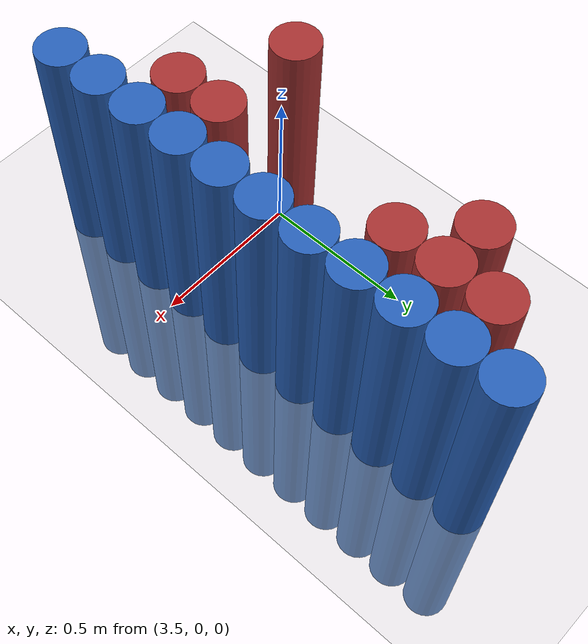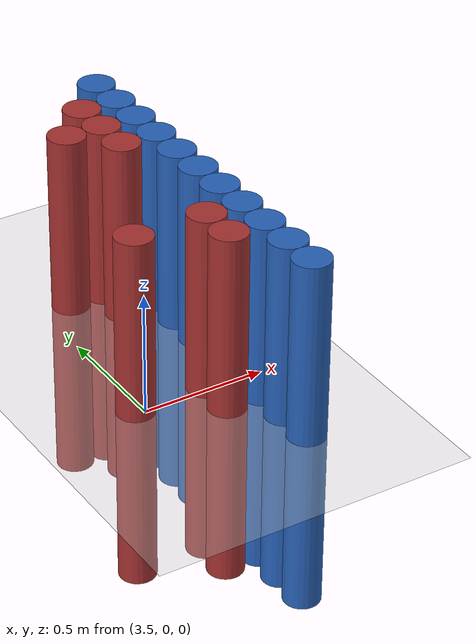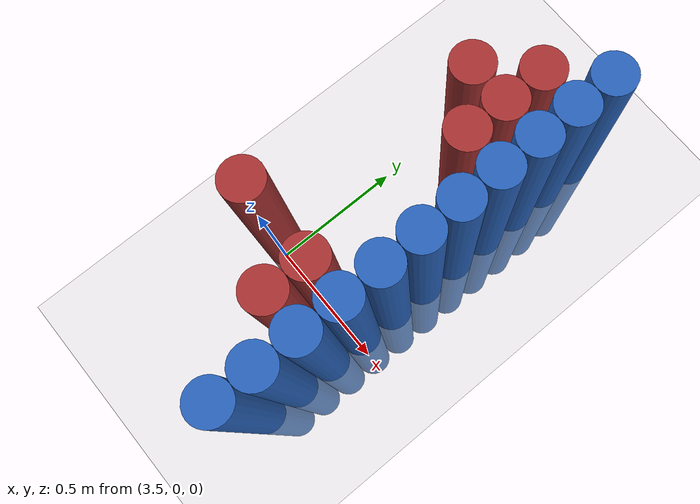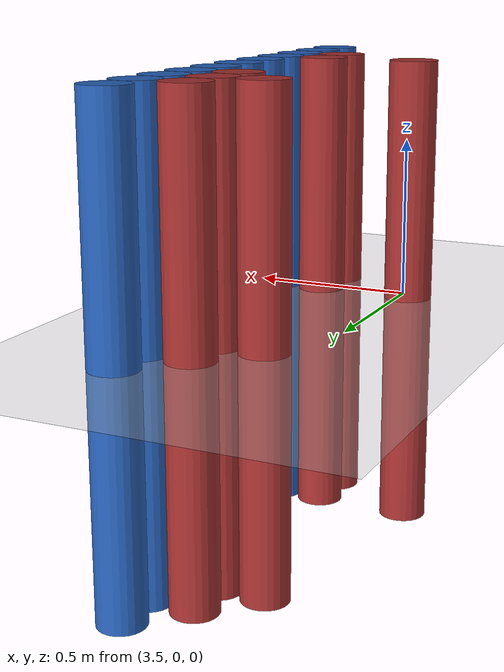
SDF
<sdf version="1.6">
 <world name="default">
  <model name="ground_plane">
   <static>1</static>
   <link name="link">
    <collision name="collision">
     <geometry><plane><normal>0 0 1</normal><size>100 100</size></plane></geometry>
     <surface><friction><ode><mu>100</mu><mu2>50</mu2></ode></friction></surface>
    </collision>
    <visual name="visual">
     <cast_shadows>0</cast_shadows>
     <geometry><plane><normal>0 0 1</normal><size>100 100</size></plane></geometry>
     <material>
      <script><uri>file://media/materials/scripts/gazebo.material</uri><name>Gazebo/Grey</name></script>
     </material>
    </visual>
   </link>
  </model>
  <model name="unit_cylinder_108">
   <static>1</static>
   <pose>3.925000 -0.425000 0.000000 0.000000 0.000000 0.000000</pose>
   <link name="link">
    <inertial>
     <mass>1</mass>
     <inertia><ixx>0.145833</ixx><ixy>0</ixy><ixz>0</ixz><iyy>0.145833</iyy><iyz>0</iyz><izz>0.125</izz></inertia>
    </inertial>
    <collision name="collision">
     <geometry><cylinder><radius>0.075000</radius><length>1.5</length></cylinder></geometry>
    </collision>
    <visual name="visual">
     <geometry><cylinder><radius>0.075000</radius><length>1.5</length></cylinder></geometry>
     <material>
      <ambient>0.152000 0.379000 0.720000 1</ambient>
      <diffuse>0.152000 0.379000 0.720000 1</diffuse>
     </material>
     <material>
      <script><name>Gazebo/Grey</name><uri>file://media/materials/scripts/gazebo.material</uri></script>
     </material>
    </visual>
   </link>
  </model>
  <model name="unit_cylinder_110">
   <static>1</static>
   <pose>3.925000 -0.275000 0.000000 0.000000 0.000000 0.000000</pose>
   <link name="link">
    <inertial>
     <mass>1</mass>
     <inertia><ixx>0.145833</ixx><ixy>0</ixy><ixz>0</ixz><iyy>0.145833</iyy><iyz>0</iyz><izz>0.125</izz></inertia>
    </inertial>
    <collision name="collision">
     <geometry><cylinder><radius>0.075000</radius><length>1.5</length></cylinder></geometry>
    </collision>
    <visual name="visual">
     <geometry><cylinder><radius>0.075000</radius><length>1.5</length></cylinder></geometry>
     <material>
      <ambient>0.152000 0.379000 0.720000 1</ambient>
      <diffuse>0.152000 0.379000 0.720000 1</diffuse>
     </material>
     <material>
      <script><name>Gazebo/Grey</name><uri>file://media/materials/scripts/gazebo.material</uri></script>
     </material>
    </visual>
   </link>
  </model>
  <model name="unit_cylinder_112">
   <static>1</static>
   <pose>3.925000 -0.125000 0.000000 0.000000 0.000000 0.000000</pose>
   <link name="link">
    <inertial>
     <mass>1</mass>
     <inertia><ixx>0.145833</ixx><ixy>0</ixy><ixz>0</ixz><iyy>0.145833</iyy><iyz>0</iyz><izz>0.125</izz></inertia>
    </inertial>
    <collision name="collision">
     <geometry><cylinder><radius>0.075000</radius><length>1.5</length></cylinder></geometry>
    </collision>
    <visual name="visual">
     <geometry><cylinder><radius>0.075000</radius><length>1.5</length></cylinder></geometry>
     <material>
      <ambient>0.152000 0.379000 0.720000 1</ambient>
      <diffuse>0.152000 0.379000 0.720000 1</diffuse>
     </material>
     <material>
      <script><name>Gazebo/Grey</name><uri>file://media/materials/scripts/gazebo.material</uri></script>
     </material>
    </visual>
   </link>
  </model>
  <model name="unit_cylinder_114">
   <static>1</static>
   <pose>3.925000 0.025000 0.000000 0.000000 0.000000 0.000000</pose>
   <link name="link">
    <inertial>
     <mass>1</mass>
     <inertia><ixx>0.145833</ixx><ixy>0</ixy><ixz>0</ixz><iyy>0.145833</iyy><iyz>0</iyz><izz>0.125</izz></inertia>
    </inertial>
    <collision name="collision">
     <geometry><cylinder><radius>0.075000</radius><length>1.5</length></cylinder></geometry>
    </collision>
    <visual name="visual">
     <geometry><cylinder><radius>0.075000</radius><length>1.5</length></cylinder></geometry>
     <material>
      <ambient>0.152000 0.379000 0.720000 1</ambient>
      <diffuse>0.152000 0.379000 0.720000 1</diffuse>
     </material>
     <material>
      <script><name>Gazebo/Grey</name><uri>file://media/materials/scripts/gazebo.material</uri></script>
     </material>
    </visual>
   </link>
  </model>
  <model name="unit_cylinder_116">
   <static>1</static>
   <pose>3.925000 0.175000 0.000000 0.000000 0.000000 0.000000</pose>
   <link name="link">
    <inertial>
     <mass>1</mass>
     <inertia><ixx>0.145833</ixx><ixy>0</ixy><ixz>0</ixz><iyy>0.145833</iyy><iyz>0</iyz><izz>0.125</izz></inertia>
    </inertial>
    <collision name="collision">
     <geometry><cylinder><radius>0.075000</radius><length>1.5</length></cylinder></geometry>
    </collision>
    <visual name="visual">
     <geometry><cylinder><radius>0.075000</radius><length>1.5</length></cylinder></geometry>
     <material>
      <ambient>0.152000 0.379000 0.720000 1</ambient>
      <diffuse>0.152000 0.379000 0.720000 1</diffuse>
     </material>
     <material>
      <script><name>Gazebo/Grey</name><uri>file://media/materials/scripts/gazebo.material</uri></script>
     </material>
    </visual>
   </link>
  </model>
  <model name="unit_cylinder_118">
   <static>1</static>
   <pose>3.925000 0.325000 0.000000 0.000000 0.000000 0.000000</pose>
   <link name="link">
    <inertial>
     <mass>1</mass>
     <inertia><ixx>0.145833</ixx><ixy>0</ixy><ixz>0</ixz><iyy>0.145833</iyy><iyz>0</iyz><izz>0.125</izz></inertia>
    </inertial>
    <collision name="collision">
     <geometry><cylinder><radius>0.075000</radius><length>1.5</length></cylinder></geometry>
    </collision>
    <visual name="visual">
     <geometry><cylinder><radius>0.075000</radius><length>1.5</length></cylinder></geometry>
     <material>
      <ambient>0.152000 0.379000 0.720000 1</ambient>
      <diffuse>0.152000 0.379000 0.720000 1</diffuse>
     </material>
     <material>
      <script><name>Gazebo/Grey</name><uri>file://media/materials/scripts/gazebo.material</uri></script>
     </material>
    </visual>
   </link>
  </model>
  <model name="unit_cylinder_120">
   <static>1</static>
   <pose>3.925000 0.475000 0.000000 0.000000 0.000000 0.000000</pose>
   <link name="link">
    <inertial>
     <mass>1</mass>
     <inertia><ixx>0.145833</ixx><ixy>0</ixy><ixz>0</ixz><iyy>0.145833</iyy><iyz>0</iyz><izz>0.125</izz></inertia>
    </inertial>
    <collision name="collision">
     <geometry><cylinder><radius>0.075000</radius><length>1.5</length></cylinder></geometry>
    </collision>
    <visual name="visual">
     <geometry><cylinder><radius>0.075000</radius><length>1.5</length></cylinder></geometry>
     <material>
      <ambient>0.152000 0.379000 0.720000 1</ambient>
      <diffuse>0.152000 0.379000 0.720000 1</diffuse>
     </material>
     <material>
      <script><name>Gazebo/Grey</name><uri>file://media/materials/scripts/gazebo.material</uri></script>
     </material>
    </visual>
   </link>
  </model>
  <model name="unit_cylinder_122">
   <static>1</static>
   <pose>3.925000 0.625000 0.000000 0.000000 0.000000 0.000000</pose>
   <link name="link">
    <inertial>
     <mass>1</mass>
     <inertia><ixx>0.145833</ixx><ixy>0</ixy><ixz>0</ixz><iyy>0.145833</iyy><iyz>0</iyz><izz>0.125</izz></inertia>
    </inertial>
    <collision name="collision">
     <geometry><cylinder><radius>0.075000</radius><length>1.5</length></cylinder></geometry>
    </collision>
    <visual name="visual">
     <geometry><cylinder><radius>0.075000</radius><length>1.5</length></cylinder></geometry>
     <material>
      <ambient>0.152000 0.379000 0.720000 1</ambient>
      <diffuse>0.152000 0.379000 0.720000 1</diffuse>
     </material>
     <material>
      <script><name>Gazebo/Grey</name><uri>file://media/materials/scripts/gazebo.material</uri></script>
     </material>
    </visual>
   </link>
  </model>
  <model name="unit_cylinder_124">
   <static>1</static>
   <pose>3.925000 0.775000 0.000000 0.000000 0.000000 0.000000</pose>
   <link name="link">
    <inertial>
     <mass>1</mass>
     <inertia><ixx>0.145833</ixx><ixy>0</ixy><ixz>0</ixz><iyy>0.145833</iyy><iyz>0</iyz><izz>0.125</izz></inertia>
    </inertial>
    <collision name="collision">
     <geometry><cylinder><radius>0.075000</radius><length>1.5</length></cylinder></geometry>
    </collision>
    <visual name="visual">
     <geometry><cylinder><radius>0.075000</radius><length>1.5</length></cylinder></geometry>
     <material>
      <ambient>0.152000 0.379000 0.720000 1</ambient>
      <diffuse>0.152000 0.379000 0.720000 1</diffuse>
     </material>
     <material>
      <script><name>Gazebo/Grey</name><uri>file://media/materials/scripts/gazebo.material</uri></script>
     </material>
    </visual>
   </link>
  </model>
  <model name="unit_cylinder_126">
   <static>1</static>
   <pose>3.925000 0.925000 0.000000 0.000000 0.000000 0.000000</pose>
   <link name="link">
    <inertial>
     <mass>1</mass>
     <inertia><ixx>0.145833</ixx><ixy>0</ixy><ixz>0</ixz><iyy>0.145833</iyy><iyz>0</iyz><izz>0.125</izz></inertia>
    </inertial>
    <collision name="collision">
     <geometry><cylinder><radius>0.075000</radius><length>1.5</length></cylinder></geometry>
    </collision>
    <visual name="visual">
     <geometry><cylinder><radius>0.075000</radius><length>1.5</length></cylinder></geometry>
     <material>
      <ambient>0.152000 0.379000 0.720000 1</ambient>
      <diffuse>0.152000 0.379000 0.720000 1</diffuse>
     </material>
     <material>
      <script><name>Gazebo/Grey</name><uri>file://media/materials/scripts/gazebo.material</uri></script>
     </material>
    </visual>
   </link>
  </model>
  <model name="unit_cylinder_128">
   <static>1</static>
   <pose>3.925000 1.075000 0.000000 0.000000 0.000000 0.000000</pose>
   <link name="link">
    <inertial>
     <mass>1</mass>
     <inertia><ixx>0.145833</ixx><ixy>0</ixy><ixz>0</ixz><iyy>0.145833</iyy><iyz>0</iyz><izz>0.125</izz></inertia>
    </inertial>
    <collision name="collision">
     <geometry><cylinder><radius>0.075000</radius><length>1.5</length></cylinder></geometry>
    </collision>
    <visual name="visual">
     <geometry><cylinder><radius>0.075000</radius><length>1.5</length></cylinder></geometry>
     <material>
      <ambient>0.152000 0.379000 0.720000 1</ambient>
      <diffuse>0.152000 0.379000 0.720000 1</diffuse>
     </material>
     <material>
      <script><name>Gazebo/Grey</name><uri>file://media/materials/scripts/gazebo.material</uri></script>
     </material>
    </visual>
   </link>
  </model>
  <model name="unit_cylinder_456">
   <static>1</static>
   <pose>3.475000 0.025000 0.000000 0.000000 0.000000 0.000000</pose>
   <link name="link">
    <inertial>
     <mass>1</mass>
     <inertia><ixx>0.145833</ixx><ixy>0</ixy><ixz>0</ixz><iyy>0.145833</iyy><iyz>0</iyz><izz>0.125</izz></inertia>
    </inertial>
    <collision name="collision">
     <geometry><cylinder><radius>0.075000</radius><length>1.5</length></cylinder></geometry>
    </collision>
    <visual name="visual">
     <geometry><cylinder><radius>0.075000</radius><length>1.5</length></cylinder></geometry>
     <material>
      <ambient>0.648000 0.192000 0.192000 1</ambient>
      <diffuse>0.648000 0.192000 0.192000 1</diffuse>
     </material>
     <material>
      <script><name>Gazebo/Grey</name><uri>file://media/materials/scripts/gazebo.material</uri></script>
     </material>
    </visual>
   </link>
  </model>
  <model name="unit_cylinder_463">
   <static>1</static>
   <pose>3.625000 0.775000 0.000000 0.000000 0.000000 0.000000</pose>
   <link name="link">
    <inertial>
     <mass>1</mass>
     <inertia><ixx>0.145833</ixx><ixy>0</ixy><ixz>0</ixz><iyy>0.145833</iyy><iyz>0</iyz><izz>0.125</izz></inertia>
    </inertial>
    <collision name="collision">
     <geometry><cylinder><radius>0.075000</radius><length>1.5</length></cylinder></geometry>
    </collision>
    <visual name="visual">
     <geometry><cylinder><radius>0.075000</radius><length>1.5</length></cylinder></geometry>
     <material>
      <ambient>0.648000 0.192000 0.192000 1</ambient>
      <diffuse>0.648000 0.192000 0.192000 1</diffuse>
     </material>
     <material>
      <script><name>Gazebo/Grey</name><uri>file://media/materials/scripts/gazebo.material</uri></script>
     </material>
    </visual>
   </link>
  </model>
  <model name="unit_cylinder_471">
   <static>1</static>
   <pose>3.775000 -0.125000 0.000000 0.000000 0.000000 0.000000</pose>
   <link name="link">
    <inertial>
     <mass>1</mass>
     <inertia><ixx>0.145833</ixx><ixy>0</ixy><ixz>0</ixz><iyy>0.145833</iyy><iyz>0</iyz><izz>0.125</izz></inertia>
    </inertial>
    <collision name="collision">
     <geometry><cylinder><radius>0.075000</radius><length>1.5</length></cylinder></geometry>
    </collision>
    <visual name="visual">
     <geometry><cylinder><radius>0.075000</radius><length>1.5</length></cylinder></geometry>
     <material>
      <ambient>0.648000 0.192000 0.192000 1</ambient>
      <diffuse>0.648000 0.192000 0.192000 1</diffuse>
     </material>
     <material>
      <script><name>Gazebo/Grey</name><uri>file://media/materials/scripts/gazebo.material</uri></script>
     </material>
    </visual>
   </link>
  </model>
  <model name="unit_cylinder_472">
   <static>1</static>
   <pose>3.775000 0.025000 0.000000 0.000000 0.000000 0.000000</pose>
   <link name="link">
    <inertial>
     <mass>1</mass>
     <inertia><ixx>0.145833</ixx><ixy>0</ixy><ixz>0</ixz><iyy>0.145833</iyy><iyz>0</iyz><izz>0.125</izz></inertia>
    </inertial>
    <collision name="collision">
     <geometry><cylinder><radius>0.075000</radius><length>1.5</length></cylinder></geometry>
    </collision>
    <visual name="visual">
     <geometry><cylinder><radius>0.075000</radius><length>1.5</length></cylinder></geometry>
     <material>
      <ambient>0.648000 0.192000 0.192000 1</ambient>
      <diffuse>0.648000 0.192000 0.192000 1</diffuse>
     </material>
     <material>
      <script><name>Gazebo/Grey</name><uri>file://media/materials/scripts/gazebo.material</uri></script>
     </material>
    </visual>
   </link>
  </model>
  <model name="unit_cylinder_473">
   <static>1</static>
   <pose>3.775000 0.625000 0.000000 0.000000 0.000000 0.000000</pose>
   <link name="link">
    <inertial>
     <mass>1</mass>
     <inertia><ixx>0.145833</ixx><ixy>0</ixy><ixz>0</ixz><iyy>0.145833</iyy><iyz>0</iyz><izz>0.125</izz></inertia>
    </inertial>
    <collision name="collision">
     <geometry><cylinder><radius>0.075000</radius><length>1.5</length></cylinder></geometry>
    </collision>
    <visual name="visual">
     <geometry><cylinder><radius>0.075000</radius><length>1.5</length></cylinder></geometry>
     <material>
      <ambient>0.648000 0.192000 0.192000 1</ambient>
      <diffuse>0.648000 0.192000 0.192000 1</diffuse>
     </material>
     <material>
      <script><name>Gazebo/Grey</name><uri>file://media/materials/scripts/gazebo.material</uri></script>
     </material>
    </visual>
   </link>
  </model>
  <model name="unit_cylinder_474">
   <static>1</static>
   <pose>3.775000 0.775000 0.000000 0.000000 0.000000 0.000000</pose>
   <link name="link">
    <inertial>
     <mass>1</mass>
     <inertia><ixx>0.145833</ixx><ixy>0</ixy><ixz>0</ixz><iyy>0.145833</iyy><iyz>0</iyz><izz>0.125</izz></inertia>
    </inertial>
    <collision name="collision">
     <geometry><cylinder><radius>0.075000</radius><length>1.5</length></cylinder></geometry>
    </collision>
    <visual name="visual">
     <geometry><cylinder><radius>0.075000</radius><length>1.5</length></cylinder></geometry>
     <material>
      <ambient>0.648000 0.192000 0.192000 1</ambient>
      <diffuse>0.648000 0.192000 0.192000 1</diffuse>
     </material>
     <material>
      <script><name>Gazebo/Grey</name><uri>file://media/materials/scripts/gazebo.material</uri></script>
     </material>
    </visual>
   </link>
  </model>
  <model name="unit_cylinder_475">
   <static>1</static>
   <pose>3.775000 0.925000 0.000000 0.000000 0.000000 0.000000</pose>
   <link name="link">
    <inertial>
     <mass>1</mass>
     <inertia><ixx>0.145833</ixx><ixy>0</ixy><ixz>0</ixz><iyy>0.145833</iyy><iyz>0</iyz><izz>0.125</izz></inertia>
    </inertial>
    <collision name="collision">
     <geometry><cylinder><radius>0.075000</radius><length>1.5</length></cylinder></geometry>
    </collision>
    <visual name="visual">
     <geometry><cylinder><radius>0.075000</radius><length>1.5</length></cylinder></geometry>
     <material>
      <ambient>0.648000 0.192000 0.192000 1</ambient>
      <diffuse>0.648000 0.192000 0.192000 1</diffuse>
     </material>
     <material>
      <script><name>Gazebo/Grey</name><uri>file://media/materials/scripts/gazebo.material</uri></script>
     </material>
    </visual>
   </link>
  </model>
  <model name="unit_cylinder_503">
   <static>1</static>
   <pose>3.925000 -0.425000 0.000000 0.000000 0.000000 0.000000</pose>
   <link name="link">
    <inertial>
     <mass>1</mass>
     <inertia><ixx>0.145833</ixx><ixy>0</ixy><ixz>0</ixz><iyy>0.145833</iyy><iyz>0</iyz><izz>0.125</izz></inertia>
    </inertial>
    <collision name="collision">
     <geometry><cylinder><radius>0.075000</radius><length>1.5</length></cylinder></geometry>
    </collision>
    <visual name="visual">
     <geometry><cylinder><radius>0.075000</radius><length>1.5</length></cylinder></geometry>
     <material>
      <ambient>0.152000 0.379000 0.720000 1</ambient>
      <diffuse>0.152000 0.379000 0.720000 1</diffuse>
     </material>
     <material>
      <script><name>Gazebo/Grey</name><uri>file://media/materials/scripts/gazebo.material</uri></script>
     </material>
    </visual>
   </link>
  </model>
  <model name="unit_cylinder_504">
   <static>1</static>
   <pose>3.925000 -0.275000 0.000000 0.000000 0.000000 0.000000</pose>
   <link name="link">
    <inertial>
     <mass>1</mass>
     <inertia><ixx>0.145833</ixx><ixy>0</ixy><ixz>0</ixz><iyy>0.145833</iyy><iyz>0</iyz><izz>0.125</izz></inertia>
    </inertial>
    <collision name="collision">
     <geometry><cylinder><radius>0.075000</radius><length>1.5</length></cylinder></geometry>
    </collision>
    <visual name="visual">
     <geometry><cylinder><radius>0.075000</radius><length>1.5</length></cylinder></geometry>
     <material>
      <ambient>0.152000 0.379000 0.720000 1</ambient>
      <diffuse>0.152000 0.379000 0.720000 1</diffuse>
     </material>
     <material>
      <script><name>Gazebo/Grey</name><uri>file://media/materials/scripts/gazebo.material</uri></script>
     </material>
    </visual>
   </link>
  </model>
  <model name="unit_cylinder_505">
   <static>1</static>
   <pose>3.925000 -0.125000 0.000000 0.000000 0.000000 0.000000</pose>
   <link name="link">
    <inertial>
     <mass>1</mass>
     <inertia><ixx>0.145833</ixx><ixy>0</ixy><ixz>0</ixz><iyy>0.145833</iyy><iyz>0</iyz><izz>0.125</izz></inertia>
    </inertial>
    <collision name="collision">
     <geometry><cylinder><radius>0.075000</radius><length>1.5</length></cylinder></geometry>
    </collision>
    <visual name="visual">
     <geometry><cylinder><radius>0.075000</radius><length>1.5</length></cylinder></geometry>
     <material>
      <ambient>0.152000 0.379000 0.720000 1</ambient>
      <diffuse>0.152000 0.379000 0.720000 1</diffuse>
     </material>
     <material>
      <script><name>Gazebo/Grey</name><uri>file://media/materials/scripts/gazebo.material</uri></script>
     </material>
    </visual>
   </link>
  </model>
  <model name="unit_cylinder_506">
   <static>1</static>
   <pose>3.925000 0.025000 0.000000 0.000000 0.000000 0.000000</pose>
   <link name="link">
    <inertial>
     <mass>1</mass>
     <inertia><ixx>0.145833</ixx><ixy>0</ixy><ixz>0</ixz><iyy>0.145833</iyy><iyz>0</iyz><izz>0.125</izz></inertia>
    </inertial>
    <collision name="collision">
     <geometry><cylinder><radius>0.075000</radius><length>1.5</length></cylinder></geometry>
    </collision>
    <visual name="visual">
     <geometry><cylinder><radius>0.075000</radius><length>1.5</length></cylinder></geometry>
     <material>
      <ambient>0.152000 0.379000 0.720000 1</ambient>
      <diffuse>0.152000 0.379000 0.720000 1</diffuse>
     </material>
     <material>
      <script><name>Gazebo/Grey</name><uri>file://media/materials/scripts/gazebo.material</uri></script>
     </material>
    </visual>
   </link>
  </model>
  <model name="unit_cylinder_507">
   <static>1</static>
   <pose>3.925000 0.175000 0.000000 0.000000 0.000000 0.000000</pose>
   <link name="link">
    <inertial>
     <mass>1</mass>
     <inertia><ixx>0.145833</ixx><ixy>0</ixy><ixz>0</ixz><iyy>0.145833</iyy><iyz>0</iyz><izz>0.125</izz></inertia>
    </inertial>
    <collision name="collision">
     <geometry><cylinder><radius>0.075000</radius><length>1.5</length></cylinder></geometry>
    </collision>
    <visual name="visual">
     <geometry><cylinder><radius>0.075000</radius><length>1.5</length></cylinder></geometry>
     <material>
      <ambient>0.152000 0.379000 0.720000 1</ambient>
      <diffuse>0.152000 0.379000 0.720000 1</diffuse>
     </material>
     <material>
      <script><name>Gazebo/Grey</name><uri>file://media/materials/scripts/gazebo.material</uri></script>
     </material>
    </visual>
   </link>
  </model>
  <model name="unit_cylinder_508">
   <static>1</static>
   <pose>3.925000 0.325000 0.000000 0.000000 0.000000 0.000000</pose>
   <link name="link">
    <inertial>
     <mass>1</mass>
     <inertia><ixx>0.145833</ixx><ixy>0</ixy><ixz>0</ixz><iyy>0.145833</iyy><iyz>0</iyz><izz>0.125</izz></inertia>
    </inertial>
    <collision name="collision">
     <geometry><cylinder><radius>0.075000</radius><length>1.5</length></cylinder></geometry>
    </collision>
    <visual name="visual">
     <geometry><cylinder><radius>0.075000</radius><length>1.5</length></cylinder></geometry>
     <material>
      <ambient>0.152000 0.379000 0.720000 1</ambient>
      <diffuse>0.152000 0.379000 0.720000 1</diffuse>
     </material>
     <material>
      <script><name>Gazebo/Grey</name><uri>file://media/materials/scripts/gazebo.material</uri></script>
     </material>
    </visual>
   </link>
  </model>
  <model name="unit_cylinder_509">
   <static>1</static>
   <pose>3.925000 0.475000 0.000000 0.000000 0.000000 0.000000</pose>
   <link name="link">
    <inertial>
     <mass>1</mass>
     <inertia><ixx>0.145833</ixx><ixy>0</ixy><ixz>0</ixz><iyy>0.145833</iyy><iyz>0</iyz><izz>0.125</izz></inertia>
    </inertial>
    <collision name="collision">
     <geometry><cylinder><radius>0.075000</radius><length>1.5</length></cylinder></geometry>
    </collision>
    <visual name="visual">
     <geometry><cylinder><radius>0.075000</radius><length>1.5</length></cylinder></geometry>
     <material>
      <ambient>0.152000 0.379000 0.720000 1</ambient>
      <diffuse>0.152000 0.379000 0.720000 1</diffuse>
     </material>
     <material>
      <script><name>Gazebo/Grey</name><uri>file://media/materials/scripts/gazebo.material</uri></script>
     </material>
    </visual>
   </link>
  </model>
  <model name="unit_cylinder_510">
   <static>1</static>
   <pose>3.925000 0.625000 0.000000 0.000000 0.000000 0.000000</pose>
   <link name="link">
    <inertial>
     <mass>1</mass>
     <inertia><ixx>0.145833</ixx><ixy>0</ixy><ixz>0</ixz><iyy>0.145833</iyy><iyz>0</iyz><izz>0.125</izz></inertia>
    </inertial>
    <collision name="collision">
     <geometry><cylinder><radius>0.075000</radius><length>1.5</length></cylinder></geometry>
    </collision>
    <visual name="visual">
     <geometry><cylinder><radius>0.075000</radius><length>1.5</length></cylinder></geometry>
     <material>
      <ambient>0.152000 0.379000 0.720000 1</ambient>
      <diffuse>0.152000 0.379000 0.720000 1</diffuse>
     </material>
     <material>
      <script><name>Gazebo/Grey</name><uri>file://media/materials/scripts/gazebo.material</uri></script>
     </material>
    </visual>
   </link>
  </model>
  <model name="unit_cylinder_511">
   <static>1</static>
   <pose>3.925000 0.775000 0.000000 0.000000 0.000000 0.000000</pose>
   <link name="link">
    <inertial>
     <mass>1</mass>
     <inertia><ixx>0.145833</ixx><ixy>0</ixy><ixz>0</ixz><iyy>0.145833</iyy><iyz>0</iyz><izz>0.125</izz></inertia>
    </inertial>
    <collision name="collision">
     <geometry><cylinder><radius>0.075000</radius><length>1.5</length></cylinder></geometry>
    </collision>
    <visual name="visual">
     <geometry><cylinder><radius>0.075000</radius><length>1.5</length></cylinder></geometry>
     <material>
      <ambient>0.152000 0.379000 0.720000 1</ambient>
      <diffuse>0.152000 0.379000 0.720000 1</diffuse>
     </material>
     <material>
      <script><name>Gazebo/Grey</name><uri>file://media/materials/scripts/gazebo.material</uri></script>
     </material>
    </visual>
   </link>
  </model>
  <model name="unit_cylinder_512">
   <static>1</static>
   <pose>3.925000 0.925000 0.000000 0.000000 0.000000 0.000000</pose>
   <link name="link">
    <inertial>
     <mass>1</mass>
     <inertia><ixx>0.145833</ixx><ixy>0</ixy><ixz>0</ixz><iyy>0.145833</iyy><iyz>0</iyz><izz>0.125</izz></inertia>
    </inertial>
    <collision name="collision">
     <geometry><cylinder><radius>0.075000</radius><length>1.5</length></cylinder></geometry>
    </collision>
    <visual name="visual">
     <geometry><cylinder><radius>0.075000</radius><length>1.5</length></cylinder></geometry>
     <material>
      <ambient>0.152000 0.379000 0.720000 1</ambient>
      <diffuse>0.152000 0.379000 0.720000 1</diffuse>
     </material>
     <material>
      <script><name>Gazebo/Grey</name><uri>file://media/materials/scripts/gazebo.material</uri></script>
     </material>
    </visual>
   </link>
  </model>
 </world>
</sdf>
